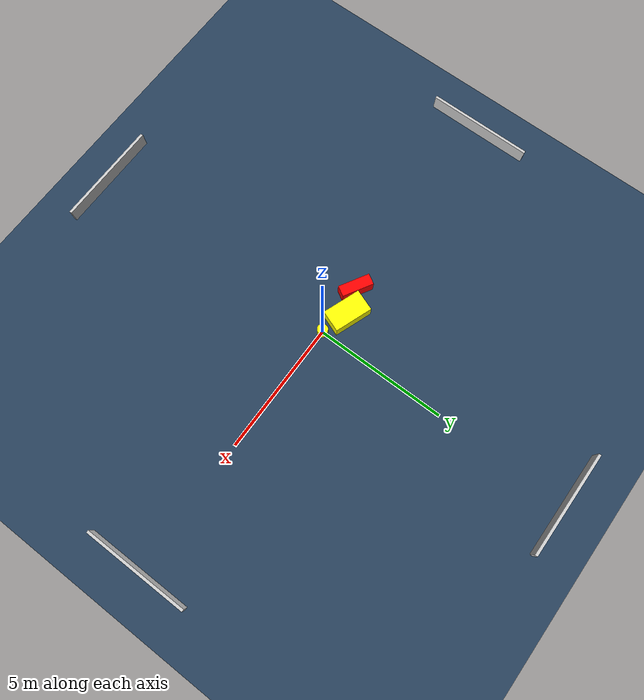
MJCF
<?xml version="1.0" ?>
<mujoco model="generated_environment">
  <option timestep="0.01" integrator="RK4" cone="elliptic"/>
  <default>
    <geom density="1"/>
  </default>
  <asset>
    <texture builtin="gradient" height="3072" name="skybox" rgb1="0.3 0.5 0.7" rgb2="0 0 0" type="skybox" width="512"/>
    <texture builtin="checker" height="300" name="groundplane" rgb1="0.2 0.3 0.4" rgb2="0.1 0.2 0.3" type="2d" width="300"/>
    <material name="groundplane" reflectance="0.2" texrepeat="5 5" texture="groundplane"/>
  </asset>
  <worldbody>
    <light dir="0 0 -1" directional="true" pos="0 0 1.5"/>
    <geom condim="3" friction="0.5 0.005 0.001" material="groundplane" name="floor" pos="0 0 0" size="0 0 0.05" type="plane"/>
    <body name="walls">
      <geom name="wall_1" condim="4" pos="-10.0 0.0 0.3" rgba="0.800000011920929 0.800000011920929 0.800000011920929 1.0" size="0.05 2.0 0.3" type="box"/>
      <geom name="wall_2" condim="4" pos="10.0 0.0 0.3" rgba="0.800000011920929 0.800000011920929 0.800000011920929 1.0" size="0.05 2.0 0.3" type="box"/>
      <geom name="wall_3" condim="4" pos="0.0 -10.0 0.3" rgba="0.800000011920929 0.800000011920929 0.800000011920929 1.0" size="2.0 0.05 0.3" type="box"/>
      <geom name="wall_4" condim="4" pos="0.0 10.0 0.3" rgba="0.800000011920929 0.800000011920929 0.800000011920929 1.0" size="2.0 0.05 0.3" type="box"/>
    </body>
    <body name="robot">
      <joint name="joint_x" type="slide" pos="0 0 0" axis="1 0 0"/>
      <joint name="joint_y" type="slide" pos="0 0 0" axis="0 1 0"/>
      <geom name="robot" type="cylinder" pos="0.0 0.0 0.2" size="0.2 0.2 0.0" mass="5.0" friction="1.0 0.005 0.0001" condim="4" rgba="1.0 1.0 0.0 1.0"/>
    </body>
    <body name="obstacle_1_movable">
      <geom name="obstacle_1_movable" condim="4" pos="-1.0246976249700541 0.32958073132069626 0.3" euler="0 0 339.6243429519364" friction="0.0 0.005 0.001" rgba="1.0 1.0 0.0 1.0" size="0.7267674580565737 0.41188627943096523 0.3" type="box" mass="0.1"/>
      <joint type="free"/>
    </body>
    <body name="obstacle_2_static">
      <geom name="obstacle_2_static" condim="4" pos="-1.9666056004491195 0.01115662475623981 0.3" euler="0 0 149.58143709938068" friction="0.0 0.005 0.001" rgba="1.0 0.0 0.0 1.0" size="0.5965922208587077 0.20525673275788078 0.3" type="box"/>
    </body>
  </worldbody>
  <actuator>
    <motor name="actuator_x" joint="joint_x" gear="1" ctrlrange="-1 1"/>
    <motor name="actuator_y" joint="joint_y" gear="1" ctrlrange="-1 1"/>
  </actuator>
</mujoco>
